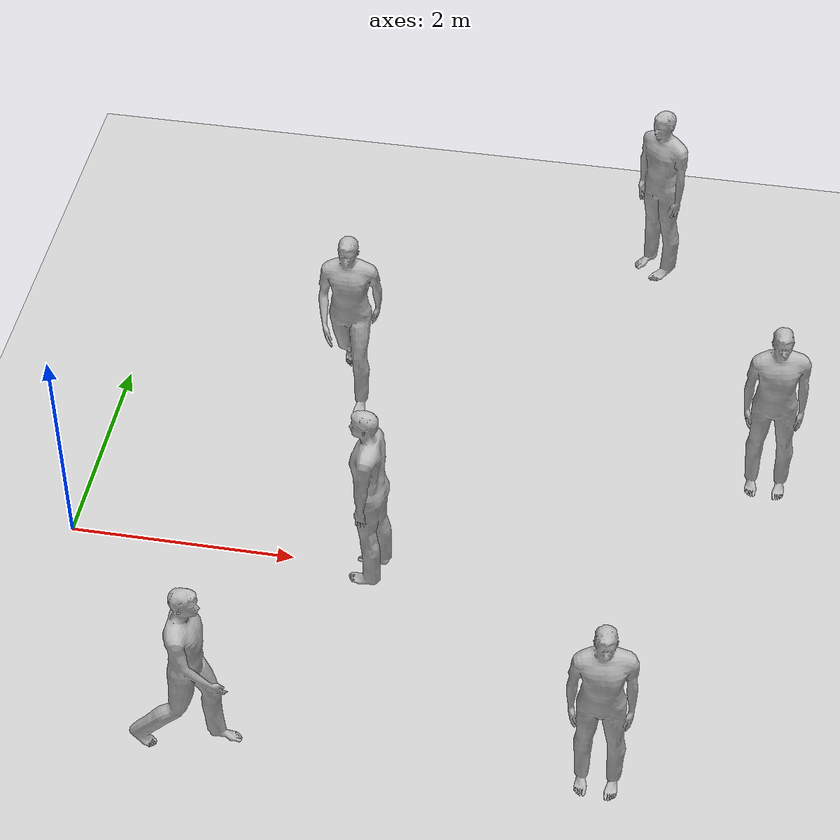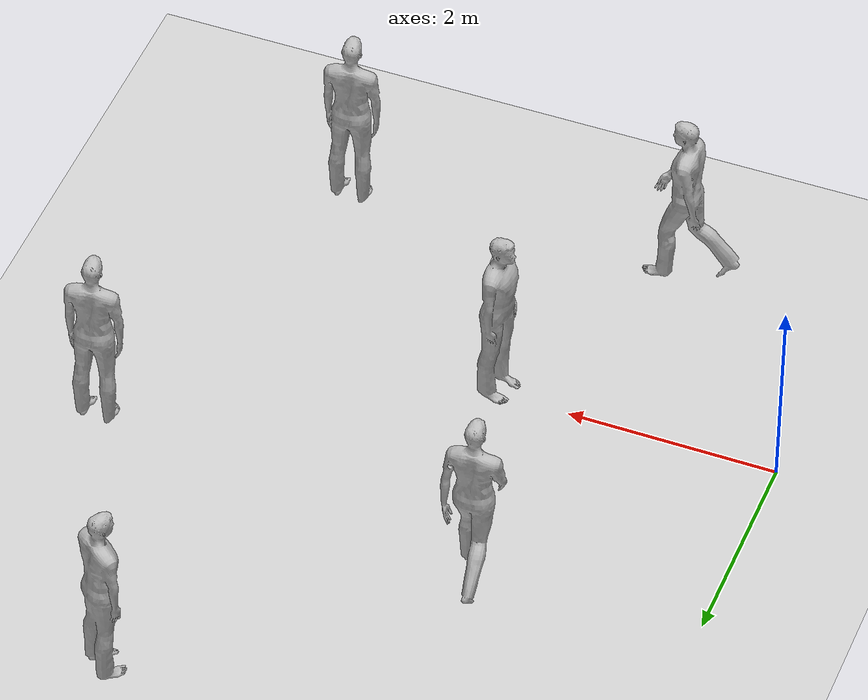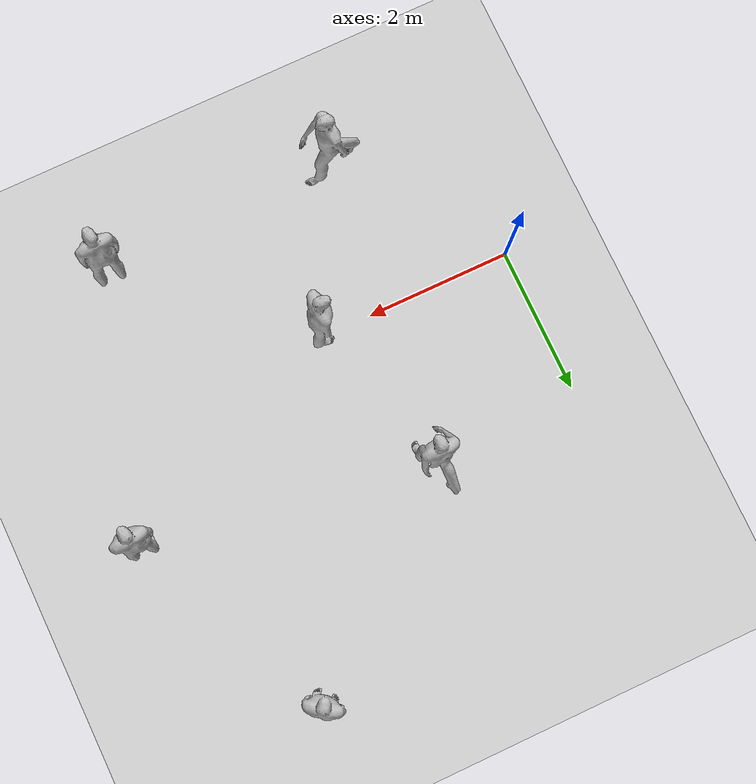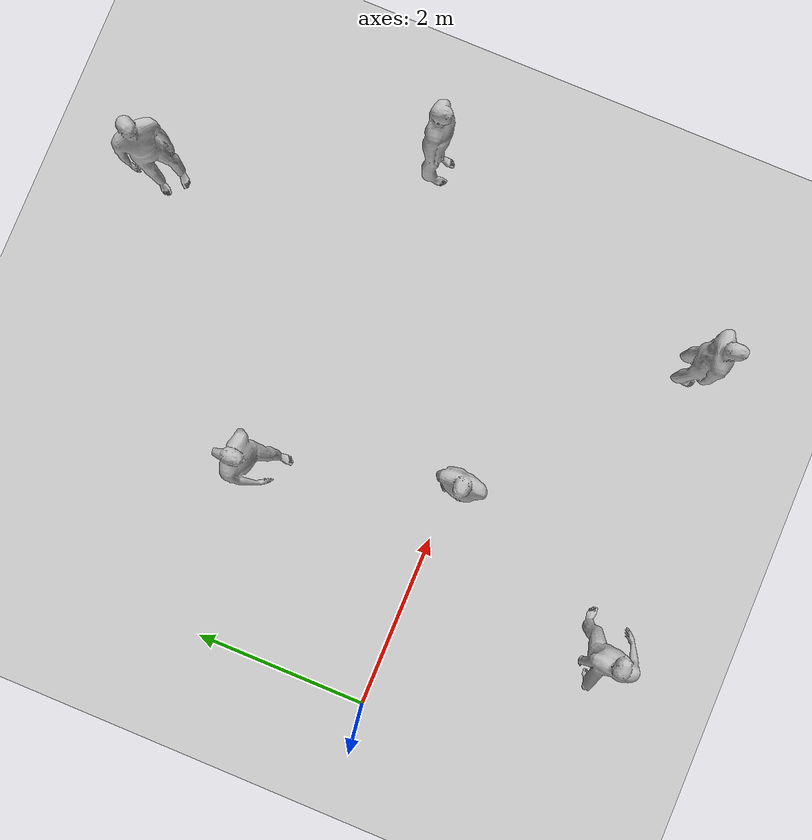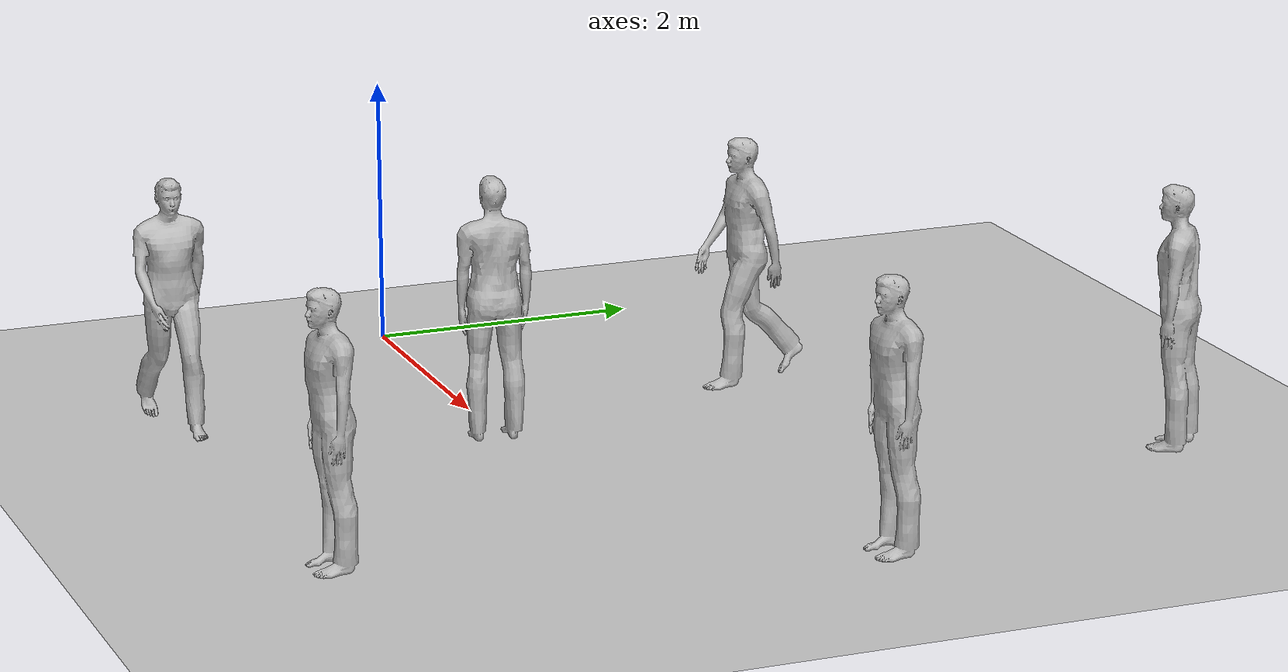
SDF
<sdf version="1.6">
 <world name="vrc_task_1">
  <scene>
   <ambient>0.4 0.4 0.4 1</ambient>
   <background>0.7 0.7 0.7 1</background>
   <shadows>1</shadows>
   <sky><clouds><speed>1</speed></clouds></sky>
  </scene>
  <physics name="default_physics" default="0" type="ode">
   <ode>
    <solver>
     <type>quick</type>
     <iters>10</iters>
     <sor>1</sor>
     <use_dynamic_moi_rescaling>0</use_dynamic_moi_rescaling>
    </solver>
    <constraints>
     <cfm>0</cfm>
     <erp>0.2</erp>
     <contact_max_correcting_vel>100</contact_max_correcting_vel>
     <contact_surface_layer>0.001</contact_surface_layer>
    </constraints>
   </ode>
   <max_step_size>0.004</max_step_size>
   <real_time_factor>1</real_time_factor>
   <real_time_update_rate>250</real_time_update_rate>
  </physics>
  <light name="sun" type="directional">
   <pose>0 0 10 0 -0 0</pose>
   <diffuse>0.8 0.8 0.8 1</diffuse>
   <specular>0.2 0.2 0.2 1</specular>
   <attenuation>
    <range>1000</range>
    <constant>0.9</constant>
    <linear>0.01</linear>
    <quadratic>0.001</quadratic>
   </attenuation>
   <direction>-0.5 0.1 -0.9</direction>
  </light>
  <model name="ground_plane">
   <static>1</static>
   <link name="link">
    <collision name="collision">
     <geometry><plane><normal>0 0 1</normal><size>100 100</size></plane></geometry>
     <surface><friction><ode><mu>100</mu><mu2>50</mu2></ode></friction></surface>
    </collision>
    <visual name="visual">
     <cast_shadows>0</cast_shadows>
     <geometry><plane><normal>0 0 1</normal><size>100 100</size></plane></geometry>
     <material>
      <script><uri>file://media/materials/scripts/gazebo.material</uri><name>Gazebo/Grey</name></script>
     </material>
    </visual>
   </link>
  </model>
  <gravity>0 0 -9.8066</gravity>
  <magnetic_field>6e-06 2.3e-05 -4.2e-05</magnetic_field>
  <atmosphere type="adiabatic"/>
  <spherical_coordinates>
   <surface_model>EARTH_WGS84</surface_model>
   <latitude_deg>0</latitude_deg>
   <longitude_deg>0</longitude_deg>
   <elevation>0</elevation>
   <heading_deg>0</heading_deg>
  </spherical_coordinates>
  <model name="person_standing">
   <link name="link">
    <inertial>
     <pose>0 -0.1 0.95 0 -0 0</pose>
     <mass>80</mass>
     <inertia><ixx>24.88</ixx><ixy>0</ixy><ixz>0</ixz><iyy>25.73</iyy><iyz>0</iyz><izz>2.48</izz></inertia>
    </inertial>
    <collision name="bottom">
     <pose>0 -0.1 0.01 0 -0 0</pose>
     <geometry><box><size>0.5 0.35 0.02</size></box></geometry>
    </collision>
    <collision name="person">
     <pose>0 0 0.02 0.04 -0 0</pose>
     <geometry><mesh><uri>model://person_standing/meshes/standing.dae</uri></mesh></geometry>
    </collision>
    <visual name="visual">
     <pose>0 0 0.02 0.04 -0 0</pose>
     <geometry><mesh><uri>model://person_standing/meshes/standing.dae</uri></mesh></geometry>
    </visual>
   </link>
   <pose>2.7863 -0.060967 0 -4e-06 2e-06 -1.70687</pose>
  </model>
  <model name="person_walking">
   <link name="link">
    <inertial>
     <pose>0 0 0.95 0 -0 0</pose>
     <mass>80</mass>
     <inertia><ixx>27.82</ixx><ixy>0</ixy><ixz>0</ixz><iyy>24.88</iyy><iyz>0</iyz><izz>4.57</izz></inertia>
    </inertial>
    <collision name="bottom">
     <pose>0 0 0.01 0 -0 0</pose>
     <geometry><box><size>0.35 0.75 0.02</size></box></geometry>
    </collision>
    <collision name="person">
     <pose>0 0 -0.02 0 -0 0</pose>
     <geometry><mesh><uri>model://person_walking/meshes/walking.dae</uri></mesh></geometry>
    </collision>
    <visual name="visual">
     <pose>0 0 -0.02 0 -0 0</pose>
     <geometry><mesh><uri>model://person_walking/meshes/walking.dae</uri></mesh></geometry>
    </visual>
   </link>
   <pose>2.10403 2.17896 -1.1e-05 2.6e-05 3e-06 6e-06</pose>
  </model>
  <model name="person_standing_0">
   <link name="link">
    <inertial>
     <pose>0 -0.1 0.95 0 -0 0</pose>
     <mass>80</mass>
     <inertia><ixx>24.88</ixx><ixy>0</ixy><ixz>0</ixz><iyy>25.73</iyy><iyz>0</iyz><izz>2.48</izz></inertia>
    </inertial>
    <collision name="bottom">
     <pose>0 -0.1 0.01 0 -0 0</pose>
     <geometry><box><size>0.5 0.35 0.02</size></box></geometry>
    </collision>
    <collision name="person">
     <pose>0 0 0.02 0.04 -0 0</pose>
     <geometry><mesh><uri>model://person_standing/meshes/standing.dae</uri></mesh></geometry>
    </collision>
    <visual name="visual">
     <pose>0 0 0.02 0.04 -0 0</pose>
     <geometry><mesh><uri>model://person_standing/meshes/standing.dae</uri></mesh></geometry>
    </visual>
   </link>
   <pose>5.98201 1.63633 0 1e-06 1e-06 0.000161</pose>
  </model>
  <model name="person_walking_0">
   <link name="link">
    <inertial>
     <pose>0 0 0.95 0 -0 0</pose>
     <mass>80</mass>
     <inertia><ixx>27.82</ixx><ixy>0</ixy><ixz>0</ixz><iyy>24.88</iyy><iyz>0</iyz><izz>4.57</izz></inertia>
    </inertial>
    <collision name="bottom">
     <pose>0 0 0.01 0 -0 0</pose>
     <geometry><box><size>0.35 0.75 0.02</size></box></geometry>
    </collision>
    <collision name="person">
     <pose>0 0 -0.02 0 -0 0</pose>
     <geometry><mesh><uri>model://person_walking/meshes/walking.dae</uri></mesh></geometry>
    </collision>
    <visual name="visual">
     <pose>0 0 -0.02 0 -0 0</pose>
     <geometry><mesh><uri>model://person_walking/meshes/walking.dae</uri></mesh></geometry>
    </visual>
   </link>
   <pose>1.60387 -2.11461 -1e-05 2.6e-05 3e-06 1.55422</pose>
  </model>
  <model name="person_standing_1">
   <link name="link">
    <inertial>
     <pose>0 -0.1 0.95 0 -0 0</pose>
     <mass>80</mass>
     <inertia><ixx>24.88</ixx><ixy>0</ixy><ixz>0</ixz><iyy>25.73</iyy><iyz>0</iyz><izz>2.48</izz></inertia>
    </inertial>
    <collision name="bottom">
     <pose>0 -0.1 0.01 0 -0 0</pose>
     <geometry><box><size>0.5 0.35 0.02</size></box></geometry>
    </collision>
    <collision name="person">
     <pose>0 0 0.02 0.04 -0 0</pose>
     <geometry><mesh><uri>model://person_standing/meshes/standing.dae</uri></mesh></geometry>
    </collision>
    <visual name="visual">
     <pose>0 0 0.02 0.04 -0 0</pose>
     <geometry><mesh><uri>model://person_standing/meshes/standing.dae</uri></mesh></geometry>
    </visual>
   </link>
   <pose>4.90244 -1.88439 0 5e-06 -8e-06 2e-06</pose>
  </model>
  <model name="person_standing_2">
   <link name="link">
    <inertial>
     <pose>0 -0.1 0.95 0 -0 0</pose>
     <mass>80</mass>
     <inertia><ixx>24.88</ixx><ixy>0</ixy><ixz>0</ixz><iyy>25.73</iyy><iyz>0</iyz><izz>2.48</izz></inertia>
    </inertial>
    <collision name="bottom">
     <pose>0 -0.1 0.01 0 -0 0</pose>
     <geometry><box><size>0.5 0.35 0.02</size></box></geometry>
    </collision>
    <collision name="person">
     <pose>0 0 0.02 0.04 -0 0</pose>
     <geometry><mesh><uri>model://person_standing/meshes/standing.dae</uri></mesh></geometry>
    </collision>
    <visual name="visual">
     <pose>0 0 0.02 0.04 -0 0</pose>
     <geometry><mesh><uri>model://person_standing/meshes/standing.dae</uri></mesh></geometry>
    </visual>
   </link>
   <pose>4.75444 4.41435 2e-06 5e-06 1.3e-05 -0.749</pose>
  </model>
 </world>
</sdf>
